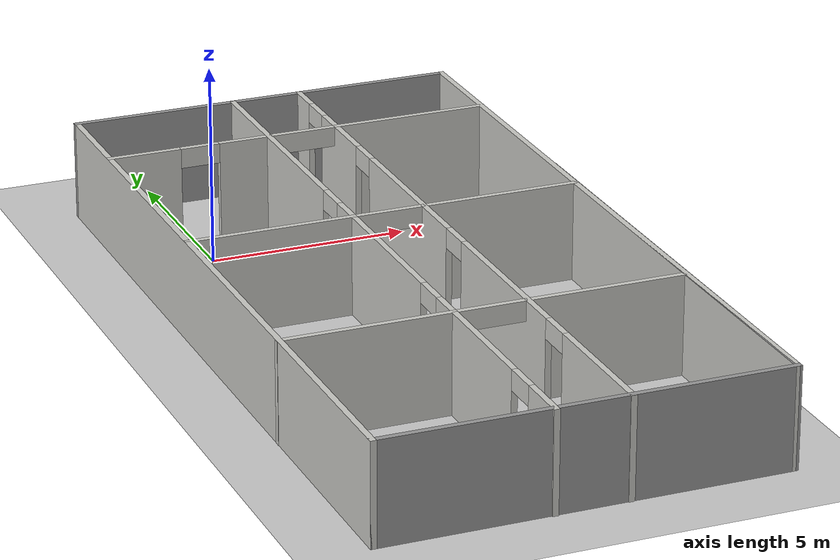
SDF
<sdf version="1.7">
 <world name="default">
  <light name="sun" type="directional">
   <pose>0 0 10 0 -0 0</pose>
   <diffuse>0.8 0.8 0.8 1</diffuse>
   <specular>0.2 0.2 0.2 1</specular>
   <attenuation>
    <range>1000</range>
    <constant>0.9</constant>
    <linear>0.01</linear>
    <quadratic>0.001</quadratic>
   </attenuation>
   <direction>-0.5 0.1 -0.9</direction>
   <spot><inner_angle>0</inner_angle><outer_angle>0</outer_angle><falloff>0</falloff></spot>
  </light>
  <model name="ground_plane">
   <static>1</static>
   <link name="link">
    <collision name="collision">
     <geometry><plane><normal>0 0 1</normal><size>100 100</size></plane></geometry>
     <surface><friction><ode><mu>100</mu><mu2>50</mu2></ode></friction></surface>
    </collision>
    <visual name="visual">
     <cast_shadows>0</cast_shadows>
     <geometry><plane><normal>0 0 1</normal><size>100 100</size></plane></geometry>
     <material>
      <script><uri>file://media/materials/scripts/gazebo.material</uri><name>Gazebo/Grey</name></script>
     </material>
    </visual>
   </link>
  </model>
  <gravity>0 0 -9.8</gravity>
  <magnetic_field>6e-06 2.3e-05 -4.2e-05</magnetic_field>
  <atmosphere type="adiabatic"/>
  <physics type="ode">
   <max_step_size>0.001</max_step_size>
   <real_time_factor>1</real_time_factor>
   <real_time_update_rate>1000</real_time_update_rate>
  </physics>
  <scene><ambient>0.4 0.4 0.4 1</ambient><background>0.7 0.7 0.7 1</background><shadows>1</shadows></scene>
  <spherical_coordinates>
   <surface_model>EARTH_WGS84</surface_model>
   <latitude_deg>0</latitude_deg>
   <longitude_deg>0</longitude_deg>
   <elevation>0</elevation>
   <heading_deg>0</heading_deg>
  </spherical_coordinates>
  <model name="Untitled">
   <pose>2.80561 -5.9297 0 0 -0 0</pose>
   <link name="Wall_0">
    <collision name="Wall_0_Collision">
     <geometry><box><size>20 0.15 2.5</size></box></geometry>
     <pose>0 0 1.25 0 -0 0</pose>
    </collision>
    <visual name="Wall_0_Visual">
     <pose>0 0 1.25 0 -0 0</pose>
     <geometry><box><size>20 0.15 2.5</size></box></geometry>
     <material>
      <script><uri>file://media/materials/scripts/gazebo.material</uri><name>Gazebo/CeilingTiled</name></script>
      <ambient>1 1 1 1</ambient>
     </material>
     <meta><layer>0</layer></meta>
    </visual>
    <pose>-4.92561 0.017696 0 0 -0 -1.5708</pose>
   </link>
   <link name="Wall_10">
    <pose>0.008661 1.6247 0 0 -0 0</pose>
    <visual name="Wall_10_Visual_0">
     <pose>-2.8659 0 1.25 0 -0 0</pose>
     <geometry><box><size>4.26821 0.15 2.5</size></box></geometry>
     <material>
      <script><uri>file://media/materials/scripts/gazebo.material</uri><name>Gazebo/CeilingTiled</name></script>
      <ambient>1 1 1 1</ambient>
     </material>
     <meta><layer>0</layer></meta>
    </visual>
    <collision name="Wall_10_Collision_0">
     <geometry><box><size>4.26821 0.15 2.5</size></box></geometry>
     <pose>-2.8659 0 1.25 0 -0 0</pose>
    </collision>
    <visual name="Wall_10_Visual_1">
     <pose>2.9591 0 1.25 0 -0 0</pose>
     <geometry><box><size>4.08179 0.15 2.5</size></box></geometry>
     <material>
      <script><uri>file://media/materials/scripts/gazebo.material</uri><name>Gazebo/CeilingTiled</name></script>
      <ambient>1 1 1 1</ambient>
     </material>
     <meta><layer>0</layer></meta>
    </visual>
    <collision name="Wall_10_Collision_1">
     <geometry><box><size>4.08179 0.15 2.5</size></box></geometry>
     <pose>2.9591 0 1.25 0 -0 0</pose>
    </collision>
    <visual name="Wall_10_Visual_2">
     <pose>0.093208 0 2.25 0 -0 0</pose>
     <geometry><box><size>1.65 0.15 0.5</size></box></geometry>
     <material>
      <script><uri>file://media/materials/scripts/gazebo.material</uri><name>Gazebo/CeilingTiled</name></script>
      <ambient>1 1 1 1</ambient>
     </material>
     <meta><layer>0</layer></meta>
    </visual>
    <collision name="Wall_10_Collision_2">
     <geometry><box><size>1.65 0.15 0.5</size></box></geometry>
     <pose>0.093208 0 2.25 0 -0 0</pose>
    </collision>
   </link>
   <link name="Wall_12">
    <collision name="Wall_12_Collision">
     <geometry><box><size>10 0.15 2.5</size></box></geometry>
     <pose>0 0 1.25 0 -0 0</pose>
    </collision>
    <visual name="Wall_12_Visual">
     <pose>0 0 1.25 0 -0 0</pose>
     <geometry><box><size>10 0.15 2.5</size></box></geometry>
     <material>
      <script><uri>file://media/materials/scripts/gazebo.material</uri><name>Gazebo/Grey</name></script>
      <ambient>1 1 1 1</ambient>
     </material>
     <meta><layer>0</layer></meta>
    </visual>
    <pose>-0.000615 -9.9073 0 0 -0 0</pose>
   </link>
   <link name="Wall_14">
    <pose>0.997646 -0.001601 0 0 -0 1.5708</pose>
    <visual name="Wall_14_Visual_0">
     <pose>-8.23891 0 1.25 0 -0 0</pose>
     <geometry><box><size>3.52217 0.15 2.5</size></box></geometry>
     <material>
      <script><uri>file://media/materials/scripts/gazebo.material</uri><name>Gazebo/CeilingTiled</name></script>
      <ambient>1 1 1 1</ambient>
     </material>
     <meta><layer>0</layer></meta>
    </visual>
    <collision name="Wall_14_Collision_0">
     <geometry><box><size>3.52217 0.15 2.5</size></box></geometry>
     <pose>-8.23891 0 1.25 0 -0 0</pose>
    </collision>
    <visual name="Wall_14_Visual_1">
     <pose>-3.18824 0 1.25 0 -0 0</pose>
     <geometry><box><size>4.77917 0.15 2.5</size></box></geometry>
     <material>
      <script><uri>file://media/materials/scripts/gazebo.material</uri><name>Gazebo/CeilingTiled</name></script>
      <ambient>1 1 1 1</ambient>
     </material>
     <meta><layer>0</layer></meta>
    </visual>
    <collision name="Wall_14_Collision_1">
     <geometry><box><size>4.77917 0.15 2.5</size></box></geometry>
     <pose>-3.18824 0 1.25 0 -0 0</pose>
    </collision>
    <visual name="Wall_14_Visual_2">
     <pose>2.52381 0 1.25 0 -0 0</pose>
     <geometry><box><size>4.84495 0.15 2.5</size></box></geometry>
     <material>
      <script><uri>file://media/materials/scripts/gazebo.material</uri><name>Gazebo/CeilingTiled</name></script>
      <ambient>1 1 1 1</ambient>
     </material>
     <meta><layer>0</layer></meta>
    </visual>
    <collision name="Wall_14_Collision_2">
     <geometry><box><size>4.84495 0.15 2.5</size></box></geometry>
     <pose>2.52381 0 1.25 0 -0 0</pose>
    </collision>
    <visual name="Wall_14_Visual_3">
     <pose>7.00614 0 1.25 0 -0 0</pose>
     <geometry><box><size>2.3197 0.15 2.5</size></box></geometry>
     <material>
      <script><uri>file://media/materials/scripts/gazebo.material</uri><name>Gazebo/CeilingTiled</name></script>
      <ambient>1 1 1 1</ambient>
     </material>
     <meta><layer>0</layer></meta>
    </visual>
    <collision name="Wall_14_Collision_3">
     <geometry><box><size>2.3197 0.15 2.5</size></box></geometry>
     <pose>7.00614 0 1.25 0 -0 0</pose>
    </collision>
    <visual name="Wall_14_Visual_4">
     <pose>9.533 0 1.25 0 -0 0</pose>
     <geometry><box><size>0.934008 0.15 2.5</size></box></geometry>
     <material>
      <script><uri>file://media/materials/scripts/gazebo.material</uri><name>Gazebo/CeilingTiled</name></script>
      <ambient>1 1 1 1</ambient>
     </material>
     <meta><layer>0</layer></meta>
    </visual>
    <collision name="Wall_14_Collision_4">
     <geometry><box><size>0.934008 0.15 2.5</size></box></geometry>
     <pose>9.533 0 1.25 0 -0 0</pose>
    </collision>
    <visual name="Wall_14_Visual_5">
     <pose>-6.02783 0 2.25 0 -0 0</pose>
     <geometry><box><size>0.9 0.15 0.5</size></box></geometry>
     <material>
      <script><uri>file://media/materials/scripts/gazebo.material</uri><name>Gazebo/CeilingTiled</name></script>
      <ambient>1 1 1 1</ambient>
     </material>
     <meta><layer>0</layer></meta>
    </visual>
    <collision name="Wall_14_Collision_5">
     <geometry><box><size>0.9 0.15 0.5</size></box></geometry>
     <pose>-6.02783 0 2.25 0 -0 0</pose>
    </collision>
    <visual name="Wall_14_Visual_6">
     <pose>-0.34866 0 2.25 0 -0 0</pose>
     <geometry><box><size>0.9 0.15 0.5</size></box></geometry>
     <material>
      <script><uri>file://media/materials/scripts/gazebo.material</uri><name>Gazebo/CeilingTiled</name></script>
      <ambient>1 1 1 1</ambient>
     </material>
     <meta><layer>0</layer></meta>
    </visual>
    <collision name="Wall_14_Collision_6">
     <geometry><box><size>0.9 0.15 0.5</size></box></geometry>
     <pose>-0.34866 0 2.25 0 -0 0</pose>
    </collision>
    <visual name="Wall_14_Visual_7">
     <pose>5.39629 0 2.25 0 -0 0</pose>
     <geometry><box><size>0.9 0.15 0.5</size></box></geometry>
     <material>
      <script><uri>file://media/materials/scripts/gazebo.material</uri><name>Gazebo/CeilingTiled</name></script>
      <ambient>1 1 1 1</ambient>
     </material>
     <meta><layer>0</layer></meta>
    </visual>
    <collision name="Wall_14_Collision_7">
     <geometry><box><size>0.9 0.15 0.5</size></box></geometry>
     <pose>5.39629 0 2.25 0 -0 0</pose>
    </collision>
    <visual name="Wall_14_Visual_8">
     <pose>8.61599 0 2.25 0 -0 0</pose>
     <geometry><box><size>0.9 0.15 0.5</size></box></geometry>
     <material>
      <script><uri>file://media/materials/scripts/gazebo.material</uri><name>Gazebo/CeilingTiled</name></script>
      <ambient>1 1 1 1</ambient>
     </material>
     <meta><layer>0</layer></meta>
    </visual>
    <collision name="Wall_14_Collision_8">
     <geometry><box><size>0.9 0.15 0.5</size></box></geometry>
     <pose>8.61599 0 2.25 0 -0 0</pose>
    </collision>
   </link>
   <link name="Wall_16">
    <pose>-0.009444 -4.45636 0 0 -0 0</pose>
    <visual name="Wall_16_Visual_0">
     <pose>-2.8538 0 1.25 0 -0 0</pose>
     <geometry><box><size>4.29239 0.15 2.5</size></box></geometry>
     <material>
      <script><uri>file://media/materials/scripts/gazebo.material</uri><name>Gazebo/CeilingTiled</name></script>
      <ambient>1 1 1 1</ambient>
     </material>
     <meta><layer>0</layer></meta>
    </visual>
    <collision name="Wall_16_Collision_0">
     <geometry><box><size>4.29239 0.15 2.5</size></box></geometry>
     <pose>-2.8538 0 1.25 0 -0 0</pose>
    </collision>
    <visual name="Wall_16_Visual_1">
     <pose>2.9712 0 1.25 0 -0 0</pose>
     <geometry><box><size>4.05761 0.15 2.5</size></box></geometry>
     <material>
      <script><uri>file://media/materials/scripts/gazebo.material</uri><name>Gazebo/CeilingTiled</name></script>
      <ambient>1 1 1 1</ambient>
     </material>
     <meta><layer>0</layer></meta>
    </visual>
    <collision name="Wall_16_Collision_1">
     <geometry><box><size>4.05761 0.15 2.5</size></box></geometry>
     <pose>2.9712 0 1.25 0 -0 0</pose>
    </collision>
    <visual name="Wall_16_Visual_2">
     <pose>0.117393 0 2.25 0 -0 0</pose>
     <geometry><box><size>1.65 0.15 0.5</size></box></geometry>
     <material>
      <script><uri>file://media/materials/scripts/gazebo.material</uri><name>Gazebo/CeilingTiled</name></script>
      <ambient>1 1 1 1</ambient>
     </material>
     <meta><layer>0</layer></meta>
    </visual>
    <collision name="Wall_16_Collision_2">
     <geometry><box><size>1.65 0.15 0.5</size></box></geometry>
     <pose>0.117393 0 2.25 0 -0 0</pose>
    </collision>
   </link>
   <link name="Wall_18">
    <pose>-0.794298 -0.017697 0 0 -0 1.5708</pose>
    <visual name="Wall_18_Visual_0">
     <pose>-9.33837 0 1.25 0 -0 0</pose>
     <geometry><box><size>1.32327 0.15 2.5</size></box></geometry>
     <material>
      <script><uri>file://media/materials/scripts/gazebo.material</uri><name>Gazebo/CeilingTiled</name></script>
      <ambient>1 1 1 1</ambient>
     </material>
     <meta><layer>0</layer></meta>
    </visual>
    <collision name="Wall_18_Collision_0">
     <geometry><box><size>1.32327 0.15 2.5</size></box></geometry>
     <pose>-9.33837 0 1.25 0 -0 0</pose>
    </collision>
    <visual name="Wall_18_Visual_1">
     <pose>-5.67537 0 1.25 0 -0 0</pose>
     <geometry><box><size>4.20273 0.15 2.5</size></box></geometry>
     <material>
      <script><uri>file://media/materials/scripts/gazebo.material</uri><name>Gazebo/CeilingTiled</name></script>
      <ambient>1 1 1 1</ambient>
     </material>
     <meta><layer>0</layer></meta>
    </visual>
    <collision name="Wall_18_Collision_1">
     <geometry><box><size>4.20273 0.15 2.5</size></box></geometry>
     <pose>-5.67537 0 1.25 0 -0 0</pose>
    </collision>
    <visual name="Wall_18_Visual_2">
     <pose>-0.069474 0 1.25 0 -0 0</pose>
     <geometry><box><size>5.20905 0.15 2.5</size></box></geometry>
     <material>
      <script><uri>file://media/materials/scripts/gazebo.material</uri><name>Gazebo/CeilingTiled</name></script>
      <ambient>1 1 1 1</ambient>
     </material>
     <meta><layer>0</layer></meta>
    </visual>
    <collision name="Wall_18_Collision_2">
     <geometry><box><size>5.20905 0.15 2.5</size></box></geometry>
     <pose>-0.069474 0 1.25 0 -0 0</pose>
    </collision>
    <visual name="Wall_18_Visual_3">
     <pose>6.71753 0 1.25 0 -0 0</pose>
     <geometry><box><size>6.56495 0.15 2.5</size></box></geometry>
     <material>
      <script><uri>file://media/materials/scripts/gazebo.material</uri><name>Gazebo/CeilingTiled</name></script>
      <ambient>1 1 1 1</ambient>
     </material>
     <meta><layer>0</layer></meta>
    </visual>
    <collision name="Wall_18_Collision_3">
     <geometry><box><size>6.56495 0.15 2.5</size></box></geometry>
     <pose>6.71753 0 1.25 0 -0 0</pose>
    </collision>
    <visual name="Wall_18_Visual_4">
     <pose>-8.22673 0 2.25 0 -0 0</pose>
     <geometry><box><size>0.9 0.15 0.5</size></box></geometry>
     <material>
      <script><uri>file://media/materials/scripts/gazebo.material</uri><name>Gazebo/CeilingTiled</name></script>
      <ambient>1 1 1 1</ambient>
     </material>
     <meta><layer>0</layer></meta>
    </visual>
    <collision name="Wall_18_Collision_4">
     <geometry><box><size>0.9 0.15 0.5</size></box></geometry>
     <pose>-8.22673 0 2.25 0 -0 0</pose>
    </collision>
    <visual name="Wall_18_Visual_5">
     <pose>-3.124 0 2.25 0 -0 0</pose>
     <geometry><box><size>0.9 0.15 0.5</size></box></geometry>
     <material>
      <script><uri>file://media/materials/scripts/gazebo.material</uri><name>Gazebo/CeilingTiled</name></script>
      <ambient>1 1 1 1</ambient>
     </material>
     <meta><layer>0</layer></meta>
    </visual>
    <collision name="Wall_18_Collision_5">
     <geometry><box><size>0.9 0.15 0.5</size></box></geometry>
     <pose>-3.124 0 2.25 0 -0 0</pose>
    </collision>
    <visual name="Wall_18_Visual_6">
     <pose>2.98505 0 2.25 0 -0 0</pose>
     <geometry><box><size>0.9 0.15 0.5</size></box></geometry>
     <material>
      <script><uri>file://media/materials/scripts/gazebo.material</uri><name>Gazebo/CeilingTiled</name></script>
      <ambient>1 1 1 1</ambient>
     </material>
     <meta><layer>0</layer></meta>
    </visual>
    <collision name="Wall_18_Collision_6">
     <geometry><box><size>0.9 0.15 0.5</size></box></geometry>
     <pose>2.98505 0 2.25 0 -0 0</pose>
    </collision>
   </link>
   <link name="Wall_2">
    <collision name="Wall_2_Collision">
     <geometry><box><size>10 0.15 2.5</size></box></geometry>
     <pose>0 0 1.25 0 -0 0</pose>
    </collision>
    <visual name="Wall_2_Visual">
     <pose>0 0 1.25 0 -0 0</pose>
     <geometry><box><size>10 0.15 2.5</size></box></geometry>
     <material>
      <script><uri>file://media/materials/scripts/gazebo.material</uri><name>Gazebo/Grey</name></script>
      <ambient>1 1 1 1</ambient>
     </material>
     <meta><layer>0</layer></meta>
    </visual>
    <pose>-0.000615 9.9427 0 0 -0 0</pose>
   </link>
   <link name="Wall_5">
    <pose>0.005984 7.34651 0 0 -0 0</pose>
    <visual name="Wall_5_Visual_0">
     <pose>-4.05949 0 1.25 0 -0 0</pose>
     <geometry><box><size>1.88103 0.15 2.5</size></box></geometry>
     <material>
      <script><uri>file://media/materials/scripts/gazebo.material</uri><name>Gazebo/CeilingTiled</name></script>
      <ambient>1 1 1 1</ambient>
     </material>
     <meta><layer>0</layer></meta>
    </visual>
    <collision name="Wall_5_Collision_0">
     <geometry><box><size>1.88103 0.15 2.5</size></box></geometry>
     <pose>-4.05949 0 1.25 0 -0 0</pose>
    </collision>
    <visual name="Wall_5_Visual_1">
     <pose>-1.42215 0 1.25 0 -0 0</pose>
     <geometry><box><size>1.39364 0.15 2.5</size></box></geometry>
     <material>
      <script><uri>file://media/materials/scripts/gazebo.material</uri><name>Gazebo/CeilingTiled</name></script>
      <ambient>1 1 1 1</ambient>
     </material>
     <meta><layer>0</layer></meta>
    </visual>
    <collision name="Wall_5_Collision_1">
     <geometry><box><size>1.39364 0.15 2.5</size></box></geometry>
     <pose>-1.42215 0 1.25 0 -0 0</pose>
    </collision>
    <visual name="Wall_5_Visual_2">
     <pose>2.96233 0 1.25 0 -0 0</pose>
     <geometry><box><size>4.07533 0.15 2.5</size></box></geometry>
     <material>
      <script><uri>file://media/materials/scripts/gazebo.material</uri><name>Gazebo/CeilingTiled</name></script>
      <ambient>1 1 1 1</ambient>
     </material>
     <meta><layer>0</layer></meta>
    </visual>
    <collision name="Wall_5_Collision_2">
     <geometry><box><size>4.07533 0.15 2.5</size></box></geometry>
     <pose>2.96233 0 1.25 0 -0 0</pose>
    </collision>
    <visual name="Wall_5_Visual_3">
     <pose>-2.61897 0 2.25 0 -0 0</pose>
     <geometry><box><size>1 0.15 0.5</size></box></geometry>
     <material>
      <script><uri>file://media/materials/scripts/gazebo.material</uri><name>Gazebo/CeilingTiled</name></script>
      <ambient>1 1 1 1</ambient>
     </material>
     <meta><layer>0</layer></meta>
    </visual>
    <collision name="Wall_5_Collision_3">
     <geometry><box><size>1 0.15 0.5</size></box></geometry>
     <pose>-2.61897 0 2.25 0 -0 0</pose>
    </collision>
    <visual name="Wall_5_Visual_4">
     <pose>0.099666 0 2.25 0 -0 0</pose>
     <geometry><box><size>1.65 0.15 0.5</size></box></geometry>
     <material>
      <script><uri>file://media/materials/scripts/gazebo.material</uri><name>Gazebo/CeilingTiled</name></script>
      <ambient>1 1 1 1</ambient>
     </material>
     <meta><layer>0</layer></meta>
    </visual>
    <collision name="Wall_5_Collision_4">
     <geometry><box><size>1.65 0.15 0.5</size></box></geometry>
     <pose>0.099666 0 2.25 0 -0 0</pose>
    </collision>
   </link>
   <link name="Wall_7">
    <collision name="Wall_7_Collision">
     <geometry><box><size>20 0.15 2.5</size></box></geometry>
     <pose>0 0 1.25 0 -0 0</pose>
    </collision>
    <visual name="Wall_7_Visual">
     <pose>0 0 1.25 0 -0 0</pose>
     <geometry><box><size>20 0.15 2.5</size></box></geometry>
     <material>
      <script><uri>file://media/materials/scripts/gazebo.material</uri><name>Gazebo/CeilingTiled</name></script>
      <ambient>1 1 1 1</ambient>
     </material>
     <meta><layer>0</layer></meta>
    </visual>
    <pose>4.92439 0.017696 0 0 -0 -1.5708</pose>
   </link>
   <link name="Wall_8">
    <collision name="Wall_8_Collision">
     <geometry><box><size>12.9 0.15 2.5</size></box></geometry>
     <pose>0 0 1.25 0 -0 0</pose>
    </collision>
    <visual name="Wall_8_Visual">
     <pose>0 0 1.25 0 -0 0</pose>
     <geometry><box><size>12.9 0.15 2.5</size></box></geometry>
     <material>
      <script><uri>file://media/materials/scripts/gazebo.material</uri><name>Gazebo/Grey</name></script>
      <ambient>1 1 1 1</ambient>
     </material>
     <meta><layer>0</layer></meta>
    </visual>
    <pose>4.92938 -3.5323 0 0 -0 1.57001</pose>
   </link>
   <static>1</static>
  </model>
 </world>
</sdf>
